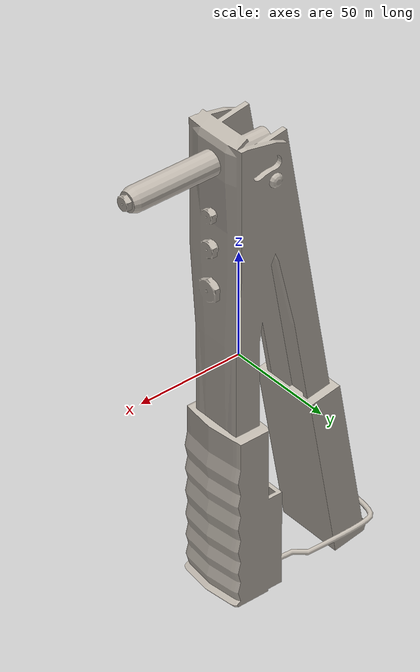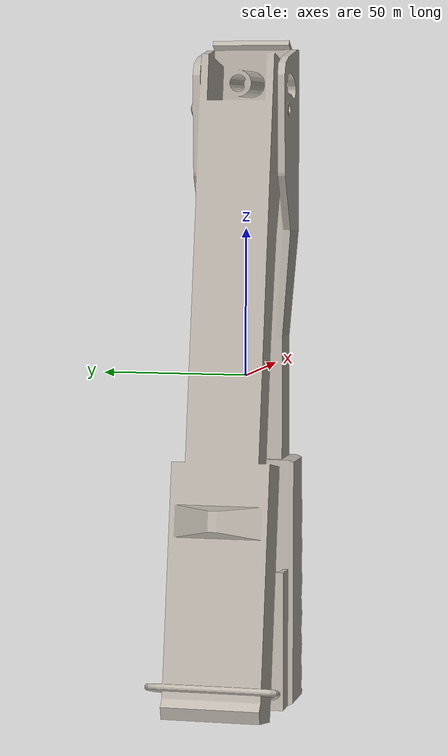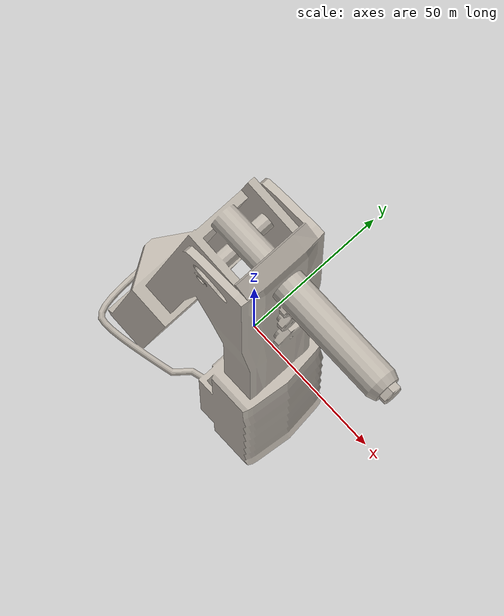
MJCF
<?xml version="1.0" encoding="utf-8"?>
<mujoco model="Rivet gun">
  <default>
    <default class="visual">
      <geom group="2" type="mesh" contype="0" conaffinity="0"/>
    </default>
    <default class="collision">
      <geom group="3" type="mesh"/>
    </default>
  </default>
  <asset>
    <texture type="2d" name="Rivet gun_BaseColor" file="Rivet gun/Rivet gun_BaseColor.png"/>
    <material name="material_0" texture="Rivet gun_BaseColor" specular="1.0" shininess="0.5"/>
    <mesh file="Rivet gun/Rivet gun.obj" name="Rivet gun"/>
    <mesh file="Rivet gun/Rivet gun_collision_0.obj" name="Rivet gun_collision_0"/>
    <mesh file="Rivet gun/Rivet gun_collision_1.obj" name="Rivet gun_collision_1"/>
    <mesh file="Rivet gun/Rivet gun_collision_2.obj" name="Rivet gun_collision_2"/>
    <mesh file="Rivet gun/Rivet gun_collision_3.obj" name="Rivet gun_collision_3"/>
    <mesh file="Rivet gun/Rivet gun_collision_4.obj" name="Rivet gun_collision_4"/>
    <mesh file="Rivet gun/Rivet gun_collision_5.obj" name="Rivet gun_collision_5"/>
    <mesh file="Rivet gun/Rivet gun_collision_6.obj" name="Rivet gun_collision_6"/>
    <mesh file="Rivet gun/Rivet gun_collision_7.obj" name="Rivet gun_collision_7"/>
    <mesh file="Rivet gun/Rivet gun_collision_8.obj" name="Rivet gun_collision_8"/>
    <mesh file="Rivet gun/Rivet gun_collision_9.obj" name="Rivet gun_collision_9"/>
    <mesh file="Rivet gun/Rivet gun_collision_10.obj" name="Rivet gun_collision_10"/>
    <mesh file="Rivet gun/Rivet gun_collision_11.obj" name="Rivet gun_collision_11"/>
    <mesh file="Rivet gun/Rivet gun_collision_12.obj" name="Rivet gun_collision_12"/>
    <mesh file="Rivet gun/Rivet gun_collision_13.obj" name="Rivet gun_collision_13"/>
    <mesh file="Rivet gun/Rivet gun_collision_14.obj" name="Rivet gun_collision_14"/>
    <mesh file="Rivet gun/Rivet gun_collision_15.obj" name="Rivet gun_collision_15"/>
    <mesh file="Rivet gun/Rivet gun_collision_16.obj" name="Rivet gun_collision_16"/>
    <mesh file="Rivet gun/Rivet gun_collision_17.obj" name="Rivet gun_collision_17"/>
    <mesh file="Rivet gun/Rivet gun_collision_18.obj" name="Rivet gun_collision_18"/>
    <mesh file="Rivet gun/Rivet gun_collision_19.obj" name="Rivet gun_collision_19"/>
    <mesh file="Rivet gun/Rivet gun_collision_20.obj" name="Rivet gun_collision_20"/>
    <mesh file="Rivet gun/Rivet gun_collision_21.obj" name="Rivet gun_collision_21"/>
    <mesh file="Rivet gun/Rivet gun_collision_22.obj" name="Rivet gun_collision_22"/>
    <mesh file="Rivet gun/Rivet gun_collision_23.obj" name="Rivet gun_collision_23"/>
    <mesh file="Rivet gun/Rivet gun_collision_24.obj" name="Rivet gun_collision_24"/>
    <mesh file="Rivet gun/Rivet gun_collision_25.obj" name="Rivet gun_collision_25"/>
    <mesh file="Rivet gun/Rivet gun_collision_26.obj" name="Rivet gun_collision_26"/>
    <mesh file="Rivet gun/Rivet gun_collision_27.obj" name="Rivet gun_collision_27"/>
    <mesh file="Rivet gun/Rivet gun_collision_28.obj" name="Rivet gun_collision_28"/>
    <mesh file="Rivet gun/Rivet gun_collision_29.obj" name="Rivet gun_collision_29"/>
    <mesh file="Rivet gun/Rivet gun_collision_30.obj" name="Rivet gun_collision_30"/>
    <mesh file="Rivet gun/Rivet gun_collision_31.obj" name="Rivet gun_collision_31"/>
    <mesh file="Rivet gun/Rivet gun_collision_32.obj" name="Rivet gun_collision_32"/>
    <mesh file="Rivet gun/Rivet gun_collision_33.obj" name="Rivet gun_collision_33"/>
  </asset>
  <worldbody>
    <body name="Rivet gun">
      <inertial mass="0.1" diaginertia="0.001 0.001 0.001" pos="0 0 0"/>
      <geom material="material_0" mesh="Rivet gun" class="visual"/>
      <geom mesh="Rivet gun_collision_0" rgba="0.9570668676548434 0.08894144275565785 0.08305443685576819 1" class="collision"/>
      <geom mesh="Rivet gun_collision_1" rgba="0.3452291905299366 0.9595664606166896 0.2579879153029292 1" class="collision"/>
      <geom mesh="Rivet gun_collision_2" rgba="0.8876556184722637 0.8945539100988117 0.8489617380901473 1" class="collision"/>
      <geom mesh="Rivet gun_collision_3" rgba="0.8730912986914118 0.07875156221673729 0.6752798103760255 1" class="collision"/>
      <geom mesh="Rivet gun_collision_4" rgba="0.6486742639734505 0.6830656388675306 0.41156969567622326 1" class="collision"/>
      <geom mesh="Rivet gun_collision_5" rgba="0.689755381992512 0.4695423664502306 0.19364980541584131 1" class="collision"/>
      <geom mesh="Rivet gun_collision_6" rgba="0.5794332438171884 0.17642474682433207 0.45957198146700307 1" class="collision"/>
      <geom mesh="Rivet gun_collision_7" rgba="0.923244451260303 0.2523131179731025 0.896785001638771 1" class="collision"/>
      <geom mesh="Rivet gun_collision_8" rgba="0.15996418482400432 0.621480366742 0.6833290651258042 1" class="collision"/>
      <geom mesh="Rivet gun_collision_9" rgba="0.6264093012450366 0.5819894669533513 0.4812336667814645 1" class="collision"/>
      <geom mesh="Rivet gun_collision_10" rgba="0.1080854760615858 0.7495437009878003 0.7675938804204282 1" class="collision"/>
      <geom mesh="Rivet gun_collision_11" rgba="0.24069039765827938 0.8337485943529214 0.789596498177222 1" class="collision"/>
      <geom mesh="Rivet gun_collision_12" rgba="0.15195080523585214 0.9933066314185528 0.1970366802524509 1" class="collision"/>
      <geom mesh="Rivet gun_collision_13" rgba="0.1855145115590694 0.1504218507340287 0.7529747024066044 1" class="collision"/>
      <geom mesh="Rivet gun_collision_14" rgba="0.21045376683255912 0.5866228857797681 0.8675270191632026 1" class="collision"/>
      <geom mesh="Rivet gun_collision_15" rgba="0.42698563908843234 0.8504067465157575 0.5729055748380826 1" class="collision"/>
      <geom mesh="Rivet gun_collision_16" rgba="0.5357551033107628 0.20443661987293138 0.49586844795621876 1" class="collision"/>
      <geom mesh="Rivet gun_collision_17" rgba="0.557214496491992 0.461424575606067 0.8572010765401272 1" class="collision"/>
      <geom mesh="Rivet gun_collision_18" rgba="0.04071842594749353 0.157431789793261 0.21363615493036758 1" class="collision"/>
      <geom mesh="Rivet gun_collision_19" rgba="0.0364203488133612 0.3691482944088661 0.6177924568156491 1" class="collision"/>
      <geom mesh="Rivet gun_collision_20" rgba="0.6038257154564566 0.8362110130273206 0.6581570632841 1" class="collision"/>
      <geom mesh="Rivet gun_collision_21" rgba="0.514785725549389 0.9207703622237758 0.35715705828379063 1" class="collision"/>
      <geom mesh="Rivet gun_collision_22" rgba="0.36594155424709696 0.7218525512117994 0.3522294406627401 1" class="collision"/>
      <geom mesh="Rivet gun_collision_23" rgba="0.6072387239542119 0.8857064776841749 0.7637437118785741 1" class="collision"/>
      <geom mesh="Rivet gun_collision_24" rgba="0.5473207553606642 0.3309915369893197 0.44840399065151704 1" class="collision"/>
      <geom mesh="Rivet gun_collision_25" rgba="0.6010225470037063 0.4312788547440414 0.5162889794993611 1" class="collision"/>
      <geom mesh="Rivet gun_collision_26" rgba="0.13656853881317155 0.3403646793449603 0.9068769454485154 1" class="collision"/>
      <geom mesh="Rivet gun_collision_27" rgba="0.18086677628627768 0.1903150961643194 0.2061032918913771 1" class="collision"/>
      <geom mesh="Rivet gun_collision_28" rgba="0.16704523005617256 0.7171693597202811 0.10058884133631085 1" class="collision"/>
      <geom mesh="Rivet gun_collision_29" rgba="0.6966616288072869 0.36221615013330666 0.9495973918292108 1" class="collision"/>
      <geom mesh="Rivet gun_collision_30" rgba="0.519667361032151 0.3430982031958215 0.4794928819745611 1" class="collision"/>
      <geom mesh="Rivet gun_collision_31" rgba="0.5654786049686584 0.086400635886554 0.585200219207414 1" class="collision"/>
      <geom mesh="Rivet gun_collision_32" rgba="0.6206158528019626 0.6778362260794797 0.9793810462903041 1" class="collision"/>
      <geom mesh="Rivet gun_collision_33" rgba="0.8700209564614569 0.9249422751491196 0.7307912516847098 1" class="collision"/>
    </body>
  </worldbody>
</mujoco>
